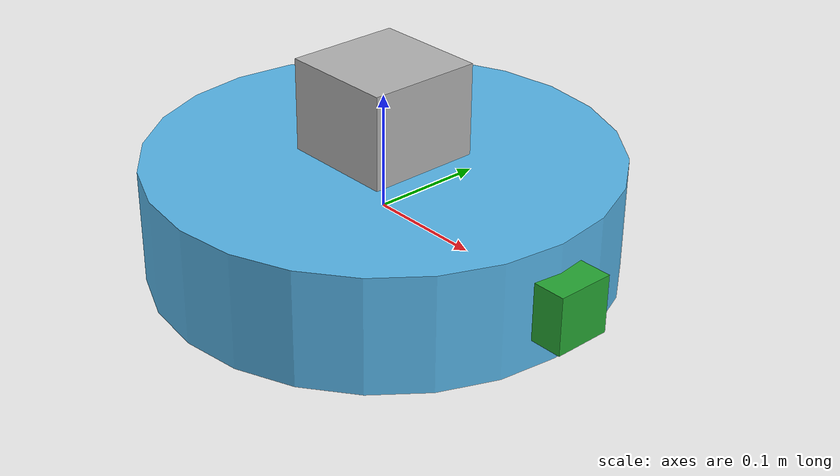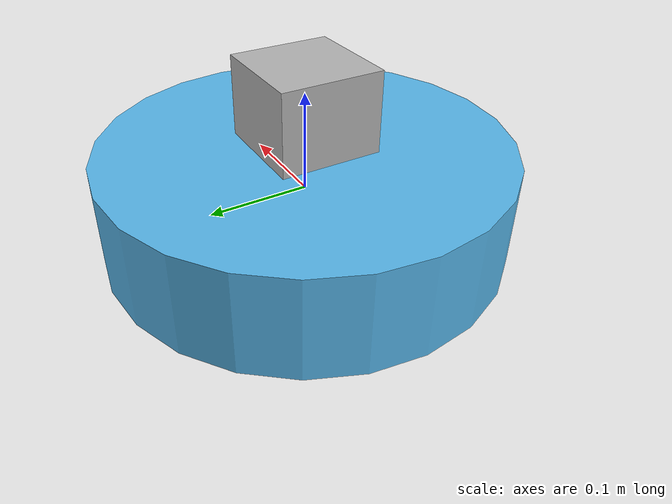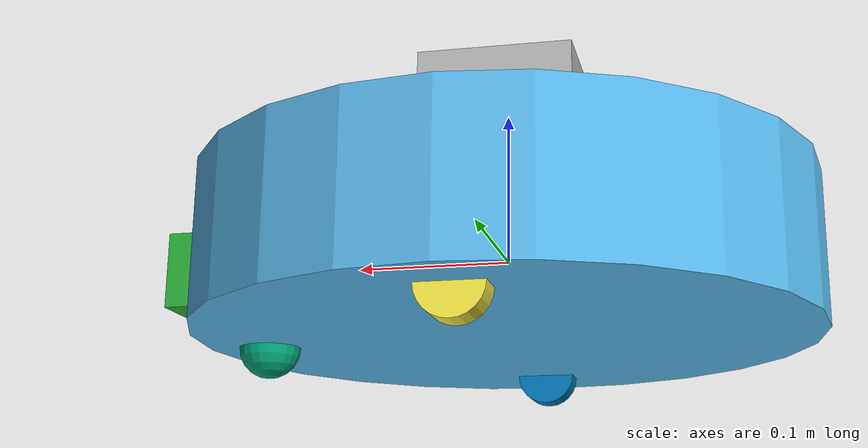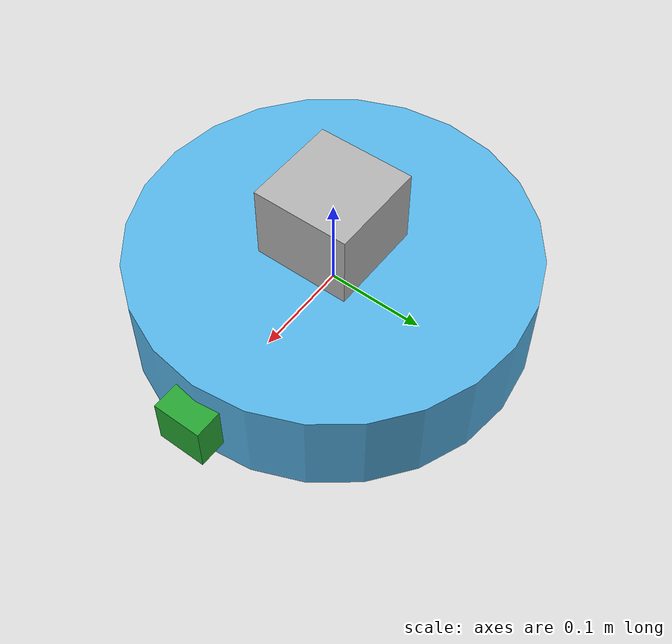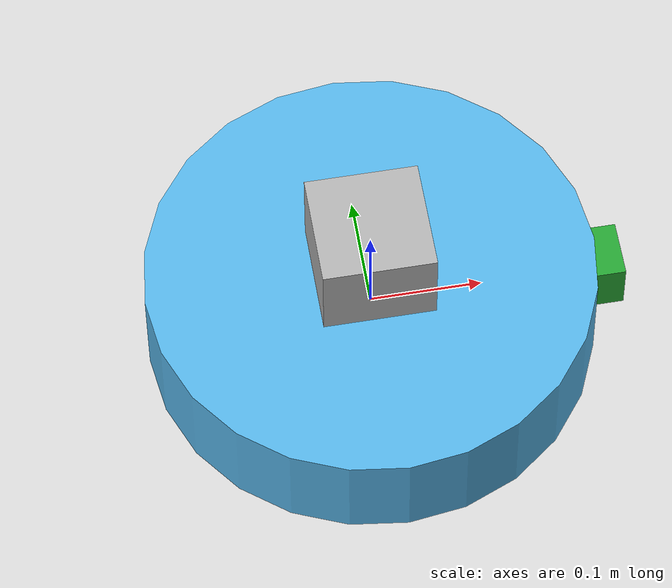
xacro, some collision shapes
<?xml version='1.0'?>

<robot name="my_bot" xmlns:xacro="http://www.ros.org/wiki/xacro">
    <xacro:include filename="$(find slam_project)/urdf/my_bot.gazebo" />
    <link name="robot_footprint"></link>

    <joint name="robot_footprint_joint" type="fixed">
        <origin xyz="0 0 0" rpy="0 0 0" />
        <parent link="robot_footprint"/>
        <child link="chassis" />
    </joint>

    <link name='chassis'>
        <pose>0 0 0.071 0 0 0</pose>

        <inertial>
            <mass value="10.0"/>
            <origin xyz="0 0 0" rpy="0 0 0"/>
            <inertia
                ixx="0.10833" ixy="0" ixz="0"
                iyy="0.10833" iyz="0"
                izz="0.2"
            />
        </inertial>

        <collision name='collision'>
            <origin xyz="0 0 0" rpy="0 0 0"/>
            <geometry>
                <cylinder radius="0.2" length="0.1"/>
            </geometry>
        </collision>

        <visual name='chassis_visual'>
            <origin xyz="0 0 0" rpy="0 0 0"/>
            <geometry>
                <cylinder radius="0.2" length="0.1"/>
            </geometry>
        </visual>
  </link>

  <link name='caster'>
    <pose>0 0 0 0 0 0</pose>

    <inertial>
      <mass value="1.0"/>
      <origin xyz="0 0 0" rpy="0 0 0"/>
      <inertia
          ixx="0.00016" ixy="0" ixz="0"
          iyy="0.00016" iyz="0"
          izz="0.00016"
      />
    </inertial>

    <collision name='caster_collision'>
      <origin xyz="0 0 0" rpy="0 0 0"/>
      <geometry>
        <sphere radius="0.02"/>
      </geometry>
    </collision>

    <visual name='caster_visual'>
      <origin xyz="0 0 0" rpy="0 0 0"/>
      <geometry>
        <sphere radius="0.02"/>
      </geometry>
    </visual>

  </link>

  <joint type="fixed" name="caster_joint">
    <origin xyz="0.16 0 -0.05" rpy="0 0 0"/>
    <child link="caster"/>
    <parent link="chassis"/>
    <dynamics damping="0.0" friction="0.0"/>
  </joint>

  <link name='left_wheel'>
    <pose>0 0 0 0 0 0</pose>

    <inertial>
      <mass value="1.0"/>
      <origin xyz="0 0 0" rpy="0 1.5707 1.5707"/>
      <inertia
          ixx="0.000133" ixy="0" ixz="0"
          iyy="0.000133" iyz="0"
          izz="0.0002"
      />
    </inertial>

    <collision name='left_collision'>
      <origin xyz="0 0 0" rpy="0 1.5707 1.5707"/>
      <geometry>
        <cylinder radius="0.02" length="0.02"/>
      </geometry>
    </collision>

    <visual name='left_wheel_visual'>
      <origin xyz="0 0 0" rpy="0 1.5707 1.5707"/>
      <geometry>
        <cylinder radius="0.02" length="0.02"/>
      </geometry>
    </visual>

  </link>

  <joint type="continuous" name="left_wheel_hinge">
    <origin xyz="0.0 0.15 -0.05" rpy="0 0 0"/>
    <child link="left_wheel"/>
    <parent link="chassis"/>
    <axis xyz="0 1 0" rpy="0 0 0"/>
    <limit effort="10000" velocity="1000"/>
    <dynamics damping="0.1" friction="0.1"/>
  </joint>

  <link name='right_wheel'>
    <pose>0 0 0 0 0 0</pose>

    <inertial>
      <mass value="1.0"/>
      <origin xyz="0 0 0" rpy="0 1.5707 1.5707"/>
      <inertia
          ixx="0.000133" ixy="0" ixz="0"
          iyy="0.000133" iyz="0"
          izz="0.0002"
     />
    </inertial>

    <collision name='right_collision'>
      <origin xyz="0 0 0" rpy="0 1.5707 1.5707"/>
      <geometry>
        <cylinder radius="0.02" length="0.02"/>
      </geometry>
    </collision>

    <visual name='right_wheel_visual'>
      <origin xyz="0 0 0" rpy="0 1.5707 1.5707"/>
      <geometry>
        <cylinder radius="0.02" length="0.02"/>
      </geometry>
    </visual>

  </link>

  <joint type="continuous" name="right_wheel_hinge">
    <origin xyz="0.0 -0.15 -0.05" rpy="0 0 0"/>
    <child link="right_wheel"/>
    <parent link="chassis"/>
    <axis xyz="0 1 0" rpy="0 0 0"/>
    <limit effort="10000" velocity="1000"/>
    <dynamics damping="0.1" friction="0.1"/>
  </joint>

  <link name='camera_depth_frame'>
    <pose>0 0 0 0 0 0</pose>

    <inertial>
      <mass value="5.0"/>
      <origin xyz="0 0 0" rpy="0 0 0"/>
      <inertia
          ixx="0.00208" ixy="0" ixz="0"
          iyy="0.00208" iyz="0"
          izz="0.00208"
      />
    </inertial>

    <collision name='collision'>
      <origin xyz="0 0 0" rpy="0 0 0"/>
      <geometry>
        <box size="0.05 0.05 0.05"/>
      </geometry>
    </collision>

    <visual name='camera_visual'>
      <origin xyz="0 0 0" rpy="0 0 0"/>
      <geometry>
        <box size="0.05 0.05 0.05"/>
      </geometry>
    </visual>

  </link>

  <joint type="fixed" name="camera_joint">
    <origin xyz="0.2 0.0 0.0" rpy="0 0 0"/>
    <child link="camera_depth_frame"/>
    <parent link="chassis"/>
  </joint>

  <link name='camera_optical_link'>
  </link>

  <joint type="fixed" name="camera_optical_joint">
    <origin xyz="0.2 0.0 0.0" rpy="${-pi/2} 0 ${-pi/2}"/>
    <child link="camera_optical_link"/>
    <parent link="chassis"/>
  </joint>

  <link name='hokuyo'>
    <pose>0 0 0 0 0 0</pose>

    <inertial>
      <mass value="1.0"/>
      <origin xyz="0 0 0" rpy="0 0 0"/>
      <inertia
          ixx="0.001667" ixy="0" ixz="0"
          iyy="0.001667" iyz="0"
          izz="0.001667"
      />
    </inertial>

    <collision name='collision'>
      <origin xyz="0 0 0" rpy="0 0 0"/>
      <geometry>
        <box size="0.1 0.1 0.1"/>
      </geometry>
    </collision>

    <visual name='hokuyo_visual'>
      <origin xyz="0 0 0" rpy="0 0 0"/>
      <geometry>
        <mesh filename="package://slam_project/meshes/hokuyo.dae"/>
      </geometry>
    </visual>

  </link>

  <joint type="fixed" name="hokuyo_joint">
    <origin xyz="0 0 0.08" rpy="0 0 0"/>
    <child link="hokuyo"/>
    <parent link="chassis"/>
  </joint>

</robot>
